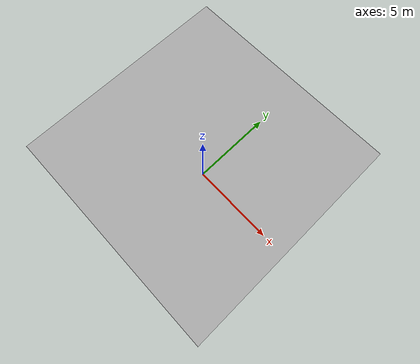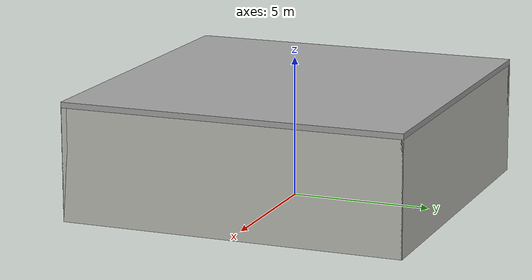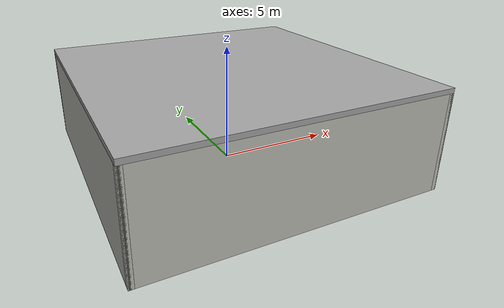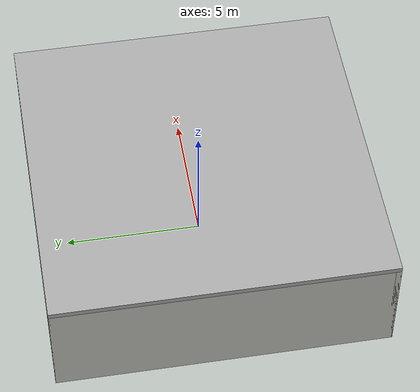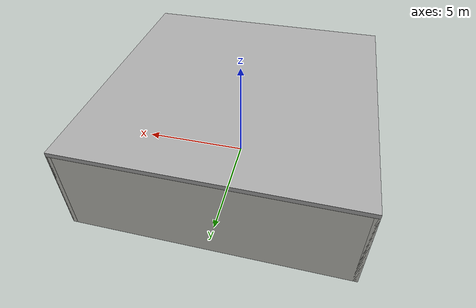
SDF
<sdf version="1.9">
 <world name="uav_arena_indoor">
  <physics type="ode">
   <max_step_size>0.004</max_step_size>
   <real_time_factor>1.0</real_time_factor>
   <real_time_update_rate>250</real_time_update_rate>
  </physics>
  <plugin name="gz::sim::systems::Physics" filename="gz-sim-physics-system"/>
  <plugin name="gz::sim::systems::UserCommands" filename="gz-sim-user-commands-system"/>
  <plugin name="gz::sim::systems::SceneBroadcaster" filename="gz-sim-scene-broadcaster-system"/>
  <plugin name="gz::sim::systems::Contact" filename="gz-sim-contact-system"/>
  <plugin name="gz::sim::systems::Imu" filename="gz-sim-imu-system"/>
  <plugin name="gz::sim::systems::AirPressure" filename="gz-sim-air-pressure-system"/>
  <plugin name="gz::sim::systems::ApplyLinkWrench" filename="gz-sim-apply-link-wrench-system"/>
  <plugin name="gz::sim::systems::NavSat" filename="gz-sim-navsat-system"/>
  <plugin name="gz::sim::systems::Sensors" filename="gz-sim-sensors-system">
   <render_engine>ogre2</render_engine>
  </plugin>
  <gravity>0 0 -9.8</gravity>
  <magnetic_field>6e-06 2.3e-05 -4.2e-05</magnetic_field>
  <atmosphere type="adiabatic"/>
  <scene>
   <grid>false</grid>
   <ambient>0.5 0.5 0.5 1</ambient>
   <background>0.5 0.5 0.55 1</background>
   <shadows>true</shadows>
  </scene>
  <light name="ceiling_light_a" type="point">
   <pose>-3 -3 3.6 0 0 0</pose>
   <intensity>1.2</intensity>
   <diffuse>0.85 0.85 0.8 1</diffuse>
   <specular>0.2 0.2 0.2 1</specular>
   <attenuation>
    <range>18</range>
    <linear>0.05</linear>
    <constant>0.4</constant>
    <quadratic>0.008</quadratic>
   </attenuation>
  </light>
  <light name="ceiling_light_b" type="point">
   <pose>3 3 3.6 0 0 0</pose>
   <intensity>1.2</intensity>
   <diffuse>0.85 0.85 0.8 1</diffuse>
   <specular>0.2 0.2 0.2 1</specular>
   <attenuation>
    <range>18</range>
    <linear>0.05</linear>
    <constant>0.4</constant>
    <quadratic>0.008</quadratic>
   </attenuation>
  </light>
  <spherical_coordinates>
   <surface_model>EARTH_WGS84</surface_model>
   <world_frame_orientation>ENU</world_frame_orientation>
   <latitude_deg>47.397971057728974</latitude_deg>
   <longitude_deg>8.546163739800146</longitude_deg>
   <elevation>0</elevation>
  </spherical_coordinates>
  <model name="room">
   <static>true</static>
   <link name="link">
    <collision name="wall_north_c">
     <pose>0 6 2 0 0 0</pose>
     <geometry><box><size>12.2 0.2 4</size></box></geometry>
    </collision>
    <visual name="wall_north_v">
     <pose>0 6 2 0 0 0</pose>
     <geometry><box><size>12.2 0.2 4</size></box></geometry>
     <material><ambient>0.7 0.7 0.68 1</ambient><diffuse>0.75 0.75 0.72 1</diffuse></material>
    </visual>
    <collision name="wall_south_c">
     <pose>0 -6 2 0 0 0</pose>
     <geometry><box><size>12.2 0.2 4</size></box></geometry>
    </collision>
    <visual name="wall_south_v">
     <pose>0 -6 2 0 0 0</pose>
     <geometry><box><size>12.2 0.2 4</size></box></geometry>
     <material><ambient>0.7 0.7 0.68 1</ambient><diffuse>0.75 0.75 0.72 1</diffuse></material>
    </visual>
    <collision name="wall_east_c">
     <pose>6 0 2 0 0 0</pose>
     <geometry><box><size>0.2 12.2 4</size></box></geometry>
    </collision>
    <visual name="wall_east_v">
     <pose>6 0 2 0 0 0</pose>
     <geometry><box><size>0.2 12.2 4</size></box></geometry>
     <material><ambient>0.7 0.7 0.68 1</ambient><diffuse>0.75 0.75 0.72 1</diffuse></material>
    </visual>
    <collision name="wall_west_c">
     <pose>-6 0 2 0 0 0</pose>
     <geometry><box><size>0.2 12.2 4</size></box></geometry>
    </collision>
    <visual name="wall_west_v">
     <pose>-6 0 2 0 0 0</pose>
     <geometry><box><size>0.2 12.2 4</size></box></geometry>
     <material><ambient>0.7 0.7 0.68 1</ambient><diffuse>0.75 0.75 0.72 1</diffuse></material>
    </visual>
    <collision name="ceiling_c">
     <pose>0 0 4.1 0 0 0</pose>
     <geometry><box><size>12.2 12.2 0.2</size></box></geometry>
    </collision>
    <visual name="ceiling_v">
     <pose>0 0 4.1 0 0 0</pose>
     <geometry><box><size>12.2 12.2 0.2</size></box></geometry>
     <material><ambient>0.6 0.6 0.6 1</ambient><diffuse>0.65 0.65 0.65 1</diffuse></material>
    </visual>
   </link>
  </model>
  <model name="crate_stack">
   <static>true</static>
   <pose>-3 3 0.6 0 0 0</pose>
   <link name="link">
    <collision name="collision"><geometry><box><size>1.2 1.2 1.2</size></box></geometry></collision>
    <visual name="visual">
     <geometry><box><size>1.2 1.2 1.2</size></box></geometry>
     <material><ambient>0.5 0.38 0.22 1</ambient><diffuse>0.6 0.45 0.26 1</diffuse></material>
    </visual>
   </link>
  </model>
  <model name="shelf">
   <static>true</static>
   <pose>4.5 -3 1.0 0 0 0</pose>
   <link name="link">
    <collision name="collision"><geometry><box><size>0.6 3.0 2.0</size></box></geometry></collision>
    <visual name="visual">
     <geometry><box><size>0.6 3.0 2.0</size></box></geometry>
     <material><ambient>0.3 0.32 0.35 1</ambient><diffuse>0.35 0.38 0.42 1</diffuse></material>
    </visual>
   </link>
  </model>
  <model name="landing_pad">
   <static>true</static>
   <pose>3 0 0.005 0 0 0</pose>
   <link name="link">
    <collision name="collision"><geometry><box><size>1.0 1.0 0.01</size></box></geometry></collision>
    <visual name="visual">
     <geometry><box><size>1.0 1.0 0.01</size></box></geometry>
     <material><ambient>0.9 0.9 0.9 1</ambient><diffuse>0.95 0.95 0.95 1</diffuse></material>
    </visual>
   </link>
  </model>
 </world>
</sdf>
